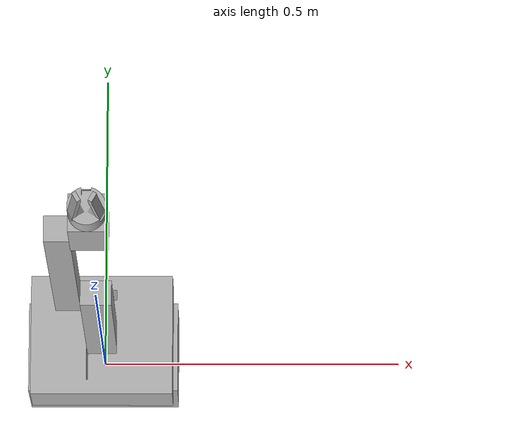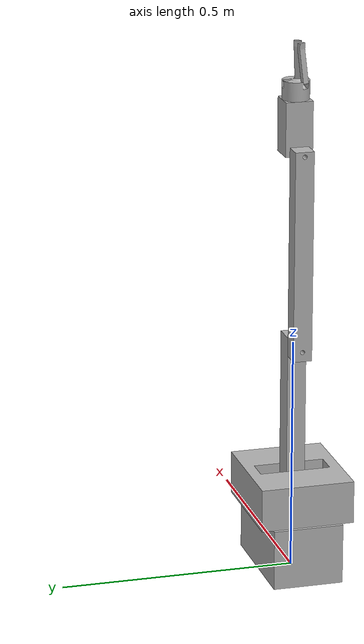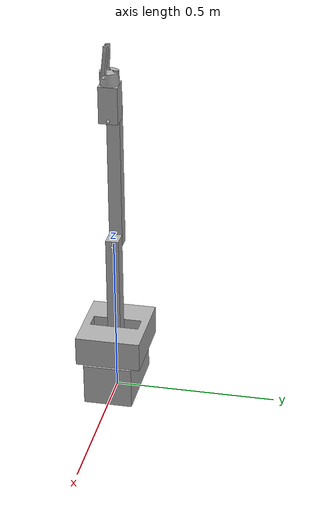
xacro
<?xml version="1.0" ?>
<robot name="arm_hand" xmlns:xacro="http://www.ros.org/wiki/xacro">

<xacro:include filename="$(find arm_hand_description)/urdf/materials.xacro" />
<xacro:include filename="$(find arm_hand_description)/urdf/arm_hand.trans" />
<xacro:include filename="$(find arm_hand_description)/urdf/arm_hand.gazebo" />
<link name="base_link">
  <inertial>
    <origin xyz="0.0 -1.4925041259863438e-17 0.06499999999999999" rpy="0 0 0"/>
    <mass value="38.26875"/>
    <inertia ixx="0.125649" iyy="0.253212" izz="0.27107" ixy="-0.0" iyz="-0.0" ixz="-0.0"/>
  </inertial>
  <visual>
    <origin xyz="0 0 0" rpy="0 0 0"/>
    <geometry>
      <mesh filename="file://$(find arm_hand_description)/meshes/base_link.stl" scale="0.001 0.001 0.001"/>
    </geometry>
    <material name="silver"/>
  </visual>
  <collision>
    <origin xyz="0 0 0" rpy="0 0 0"/>
    <geometry>
      <mesh filename="file://$(find arm_hand_description)/meshes/base_link.stl" scale="0.001 0.001 0.001"/>
    </geometry>
  </collision>
</link>

<link name="link_1_1">
  <inertial>
    <origin xyz="0.0 -1.9172293647565634e-17 0.044466790992911065" rpy="0 0 0"/>
    <mass value="29.791045516659985"/>
    <inertia ixx="0.126725" iyy="0.177006" izz="0.260409" ixy="-0.0" iyz="-0.0" ixz="-0.0"/>
  </inertial>
  <visual>
    <origin xyz="-0.0 0.0 -0.13" rpy="0 0 0"/>
    <geometry>
      <mesh filename="file://$(find arm_hand_description)/meshes/link_1_1.stl" scale="0.001 0.001 0.001"/>
    </geometry>
    <material name="silver"/>
  </visual>
  <collision>
    <origin xyz="-0.0 0.0 -0.13" rpy="0 0 0"/>
    <geometry>
      <mesh filename="file://$(find arm_hand_description)/meshes/link_1_1.stl" scale="0.001 0.001 0.001"/>
    </geometry>
  </collision>
</link>

<link name="link_2_1">
  <inertial>
    <origin xyz="-0.02500000000000002 -0.00020598185767762477 0.15763545013473024" rpy="0 0 0"/>
    <mass value="5.4333462441733"/>
    <inertia ixx="0.05532" iyy="0.05572" izz="0.001864" ixy="0.0" iyz="-1e-06" ixz="-0.0"/>
  </inertial>
  <visual>
    <origin xyz="-0.025 0.0 -0.187" rpy="0 0 0"/>
    <geometry>
      <mesh filename="file://$(find arm_hand_description)/meshes/link_2_1.stl" scale="0.001 0.001 0.001"/>
    </geometry>
    <material name="silver"/>
  </visual>
  <collision>
    <origin xyz="-0.025 0.0 -0.187" rpy="0 0 0"/>
    <geometry>
      <mesh filename="file://$(find arm_hand_description)/meshes/link_2_1.stl" scale="0.001 0.001 0.001"/>
    </geometry>
  </collision>
</link>

<link name="link_3_1">
  <inertial>
    <origin xyz="-0.020000000000000018 1.8021706576167485e-07 0.20495556452816466" rpy="0 0 0"/>
    <mass value="5.602676995338639"/>
    <inertia ixx="0.093954" iyy="0.093948" izz="0.0015" ixy="0.0" iyz="0.0" ixz="0.0"/>
  </inertial>
  <visual>
    <origin xyz="0.025 0.000205 -0.499621" rpy="0 0 0"/>
    <geometry>
      <mesh filename="file://$(find arm_hand_description)/meshes/link_3_1.stl" scale="0.001 0.001 0.001"/>
    </geometry>
    <material name="silver"/>
  </visual>
  <collision>
    <origin xyz="0.025 0.000205 -0.499621" rpy="0 0 0"/>
    <geometry>
      <mesh filename="file://$(find arm_hand_description)/meshes/link_3_1.stl" scale="0.001 0.001 0.001"/>
    </geometry>
  </collision>
</link>

<link name="link_4_1">
  <inertial>
    <origin xyz="0.028999999999999984 1.8021706576387036e-07 0.04806556289092756" rpy="0 0 0"/>
    <mass value="3.001091821620516"/>
    <inertia ixx="0.004116" iyy="0.004106" izz="0.001692" ixy="-0.0" iyz="-0.0" ixz="0.0"/>
  </inertial>
  <visual>
    <origin xyz="0.025 0.000205 -0.919621" rpy="0 0 0"/>
    <geometry>
      <mesh filename="file://$(find arm_hand_description)/meshes/link_4_1.stl" scale="0.001 0.001 0.001"/>
    </geometry>
    <material name="silver"/>
  </visual>
  <collision>
    <origin xyz="0.025 0.000205 -0.919621" rpy="0 0 0"/>
    <geometry>
      <mesh filename="file://$(find arm_hand_description)/meshes/link_4_1.stl" scale="0.001 0.001 0.001"/>
    </geometry>
  </collision>
</link>

<link name="handbase_5_1">
  <inertial>
    <origin xyz="-1.8214596497756474e-17 1.802170657603196e-07 0.018609960542309345" rpy="0 0 0"/>
    <mass value="0.7459701857697482"/>
    <inertia ixx="0.000246" iyy="0.000246" izz="0.000307" ixy="-0.0" iyz="0.0" ixz="0.0"/>
  </inertial>
  <visual>
    <origin xyz="-0.004 0.000205 -1.024621" rpy="0 0 0"/>
    <geometry>
      <mesh filename="file://$(find arm_hand_description)/meshes/handbase_5_1.stl" scale="0.001 0.001 0.001"/>
    </geometry>
    <material name="silver"/>
  </visual>
  <collision>
    <origin xyz="-0.004 0.000205 -1.024621" rpy="0 0 0"/>
    <geometry>
      <mesh filename="file://$(find arm_hand_description)/meshes/handbase_5_1.stl" scale="0.001 0.001 0.001"/>
    </geometry>
  </collision>
</link>

<link name="finger1_6_1">
  <inertial>
    <origin xyz="-0.007499513941624035 -0.006437106950567203 0.039500770672345364" rpy="0 0 0"/>
    <mass value="0.06468846786272993"/>
    <inertia ixx="3.9e-05" iyy="3.9e-05" izz="2e-06" ixy="-0.0" iyz="6e-06" ixz="-0.0"/>
  </inertial>
  <visual>
    <origin xyz="-0.011535 -0.024759 -1.061824" rpy="0 0 0"/>
    <geometry>
      <mesh filename="file://$(find arm_hand_description)/meshes/finger1_6_1.stl" scale="0.001 0.001 0.001"/>
    </geometry>
    <material name="silver"/>
  </visual>
  <collision>
    <origin xyz="-0.011535 -0.024759 -1.061824" rpy="0 0 0"/>
    <geometry>
      <mesh filename="file://$(find arm_hand_description)/meshes/finger1_6_1.stl" scale="0.001 0.001 0.001"/>
    </geometry>
  </collision>
</link>

<link name="finger2_7_1">
  <inertial>
    <origin xyz="0.009324653009362697 -0.003276444371084373 0.039500770672345586" rpy="0 0 0"/>
    <mass value="0.06468846786272812"/>
    <inertia ixx="3.9e-05" iyy="3.9e-05" izz="2e-06" ixy="0.0" iyz="-3e-06" ixz="-5e-06"/>
  </inertial>
  <visual>
    <origin xyz="0.021387 0.006161 -1.061824" rpy="0 0 0"/>
    <geometry>
      <mesh filename="file://$(find arm_hand_description)/meshes/finger2_7_1.stl" scale="0.001 0.001 0.001"/>
    </geometry>
    <material name="silver"/>
  </visual>
  <collision>
    <origin xyz="0.021387 0.006161 -1.061824" rpy="0 0 0"/>
    <geometry>
      <mesh filename="file://$(find arm_hand_description)/meshes/finger2_7_1.stl" scale="0.001 0.001 0.001"/>
    </geometry>
  </collision>
</link>

<link name="finger3_8_1">
  <inertial>
    <origin xyz="-0.009758139067738657 -0.004026908027151965 0.039500770672345364" rpy="0 0 0"/>
    <mass value="0.06468846786272814"/>
    <inertia ixx="3.9e-05" iyy="3.9e-05" izz="2e-06" ixy="-0.0" iyz="-3e-06" ixz="5e-06"/>
  </inertial>
  <visual>
    <origin xyz="-0.029785 0.005472 -1.061824" rpy="0 0 0"/>
    <geometry>
      <mesh filename="file://$(find arm_hand_description)/meshes/finger3_8_1.stl" scale="0.001 0.001 0.001"/>
    </geometry>
    <material name="silver"/>
  </visual>
  <collision>
    <origin xyz="-0.029785 0.005472 -1.061824" rpy="0 0 0"/>
    <geometry>
      <mesh filename="file://$(find arm_hand_description)/meshes/finger3_8_1.stl" scale="0.001 0.001 0.001"/>
    </geometry>
  </collision>
</link>

<joint name="Revolute 1" type="continuous">
  <origin xyz="0.0 0.0 0.13" rpy="0 0 0"/>
  <parent link="base_link"/>
  <child link="link_1_1"/>
  <axis xyz="0.0 0.0 1.0"/>
</joint>

<joint name="Revolute 2" type="continuous">
  <origin xyz="0.025 0.0 0.057" rpy="0 0 0"/>
  <parent link="link_1_1"/>
  <child link="link_2_1"/>
  <axis xyz="1.0 0.0 0.0"/>
</joint>

<joint name="Revolute 3" type="continuous">
  <origin xyz="-0.05 -0.000205 0.312621" rpy="0 0 0"/>
  <parent link="link_2_1"/>
  <child link="link_3_1"/>
  <axis xyz="-1.0 0.0 0.0"/>
</joint>

<joint name="Revolute 4" type="continuous">
  <origin xyz="0.0 0.0 0.42" rpy="0 0 0"/>
  <parent link="link_3_1"/>
  <child link="link_4_1"/>
  <axis xyz="-1.0 0.0 0.0"/>
</joint>

<joint name="Revolute 5" type="continuous">
  <origin xyz="0.029 0.0 0.105" rpy="0 0 0"/>
  <parent link="link_4_1"/>
  <child link="handbase_5_1"/>
  <axis xyz="0.0 0.0 1.0"/>
</joint>

<joint name="Revolute 6" type="continuous">
  <origin xyz="0.007535 0.024964 0.037203" rpy="0 0 0"/>
  <parent link="handbase_5_1"/>
  <child link="finger1_6_1"/>
  <axis xyz="1.0 0.0 0.0"/>
</joint>

<joint name="Revolute 7" type="continuous">
  <origin xyz="-0.025387 -0.005956 0.037203" rpy="0 0 0"/>
  <parent link="handbase_5_1"/>
  <child link="finger2_7_1"/>
  <axis xyz="-0.5 0.866025 0.0"/>
</joint>

<joint name="Revolute 8" type="continuous">
  <origin xyz="0.025785 -0.005267 0.037203" rpy="0 0 0"/>
  <parent link="handbase_5_1"/>
  <child link="finger3_8_1"/>
  <axis xyz="-0.5 -0.866025 0.0"/>
</joint>

</robot>

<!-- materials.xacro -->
<robot name="arm_hand" xmlns:xacro="http://www.ros.org/wiki/xacro" >

<material name="silver">
  <color rgba="0.700 0.700 0.700 1.000"/>
</material>

</robot>

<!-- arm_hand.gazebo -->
<robot name="arm_hand" xmlns:xacro="http://www.ros.org/wiki/xacro" >

<xacro:property name="body_color" value="Gazebo/Silver" />

<gazebo>
  <plugin name="control" filename="libgazebo_ros_control.so"/>
</gazebo>
<gazebo reference="base_link">
  <material>${body_color}</material>
  <mu1>0.2</mu1>
  <mu2>0.2</mu2>
  <self_collide>true</self_collide>
  <gravity>true</gravity>
</gazebo>

<gazebo reference="link_1_1">
  <material>${body_color}</material>
  <mu1>0.2</mu1>
  <mu2>0.2</mu2>
  <self_collide>true</self_collide>
</gazebo>

<gazebo reference="link_2_1">
  <material>${body_color}</material>
  <mu1>0.2</mu1>
  <mu2>0.2</mu2>
  <self_collide>true</self_collide>
</gazebo>

<gazebo reference="link_3_1">
  <material>${body_color}</material>
  <mu1>0.2</mu1>
  <mu2>0.2</mu2>
  <self_collide>true</self_collide>
</gazebo>

<gazebo reference="link_4_1">
  <material>${body_color}</material>
  <mu1>0.2</mu1>
  <mu2>0.2</mu2>
  <self_collide>true</self_collide>
</gazebo>

<gazebo reference="handbase_5_1">
  <material>${body_color}</material>
  <mu1>0.2</mu1>
  <mu2>0.2</mu2>
  <self_collide>true</self_collide>
</gazebo>

<gazebo reference="finger1_6_1">
  <material>${body_color}</material>
  <mu1>0.2</mu1>
  <mu2>0.2</mu2>
  <self_collide>true</self_collide>
</gazebo>

<gazebo reference="finger2_7_1">
  <material>${body_color}</material>
  <mu1>0.2</mu1>
  <mu2>0.2</mu2>
  <self_collide>true</self_collide>
</gazebo>

<gazebo reference="finger3_8_1">
  <material>${body_color}</material>
  <mu1>0.2</mu1>
  <mu2>0.2</mu2>
  <self_collide>true</self_collide>
</gazebo>

</robot>
